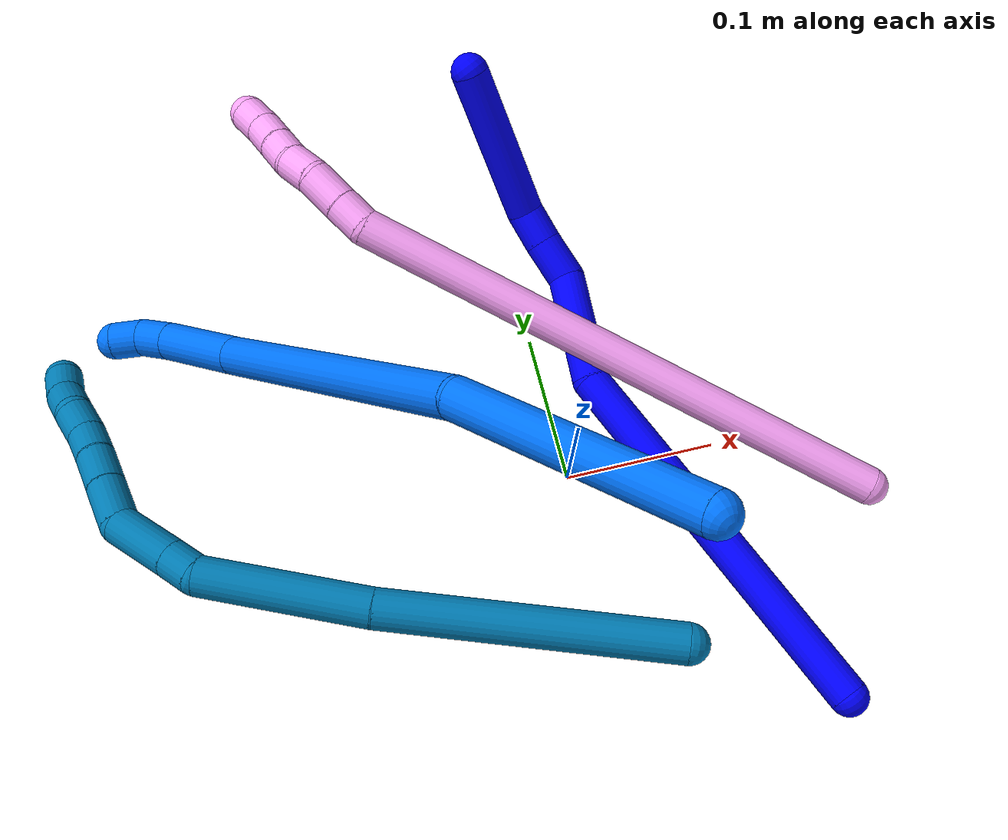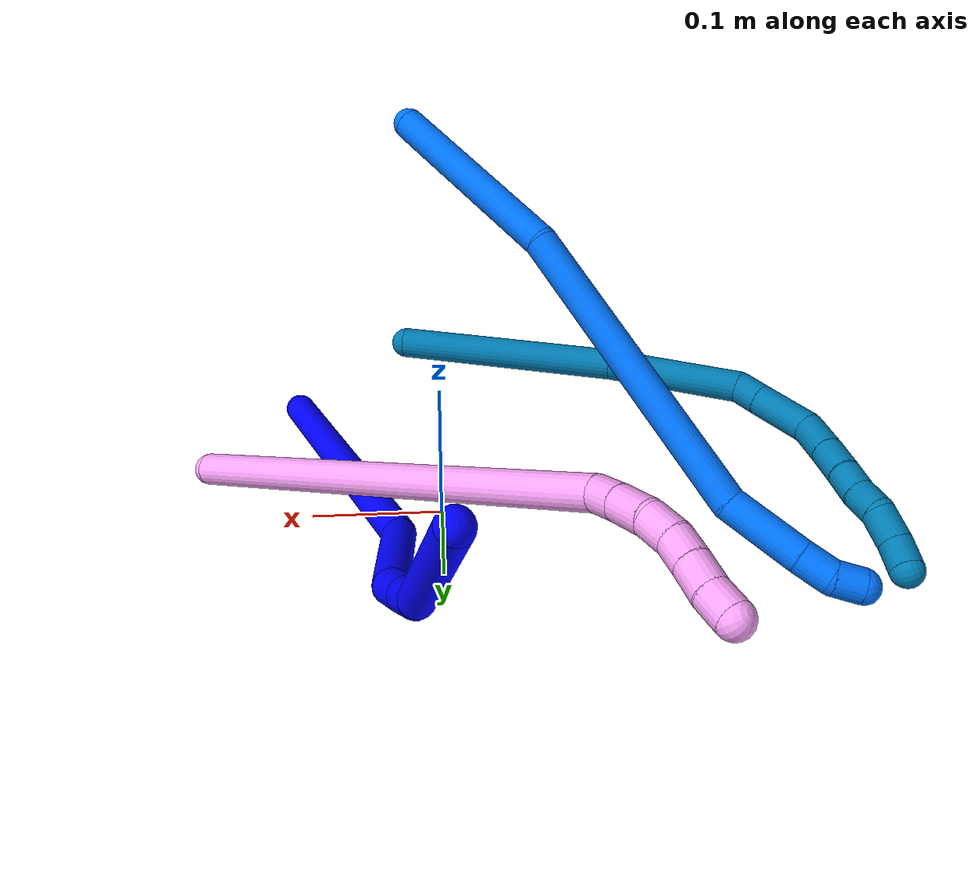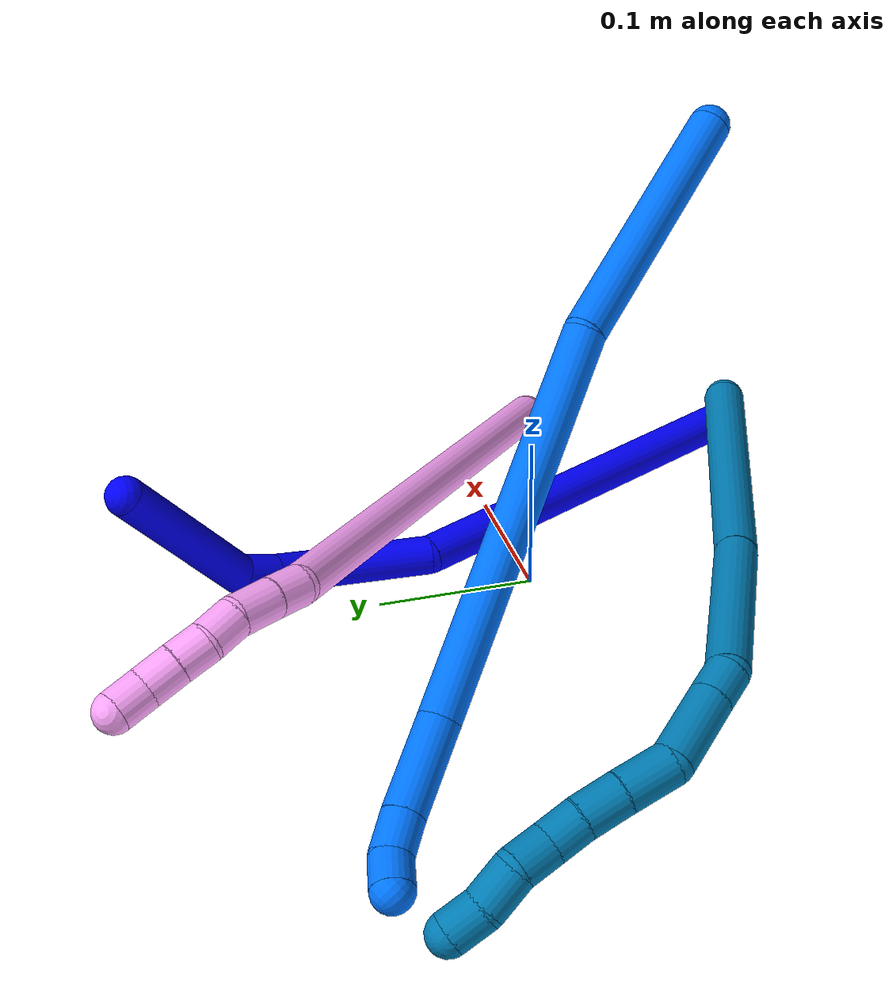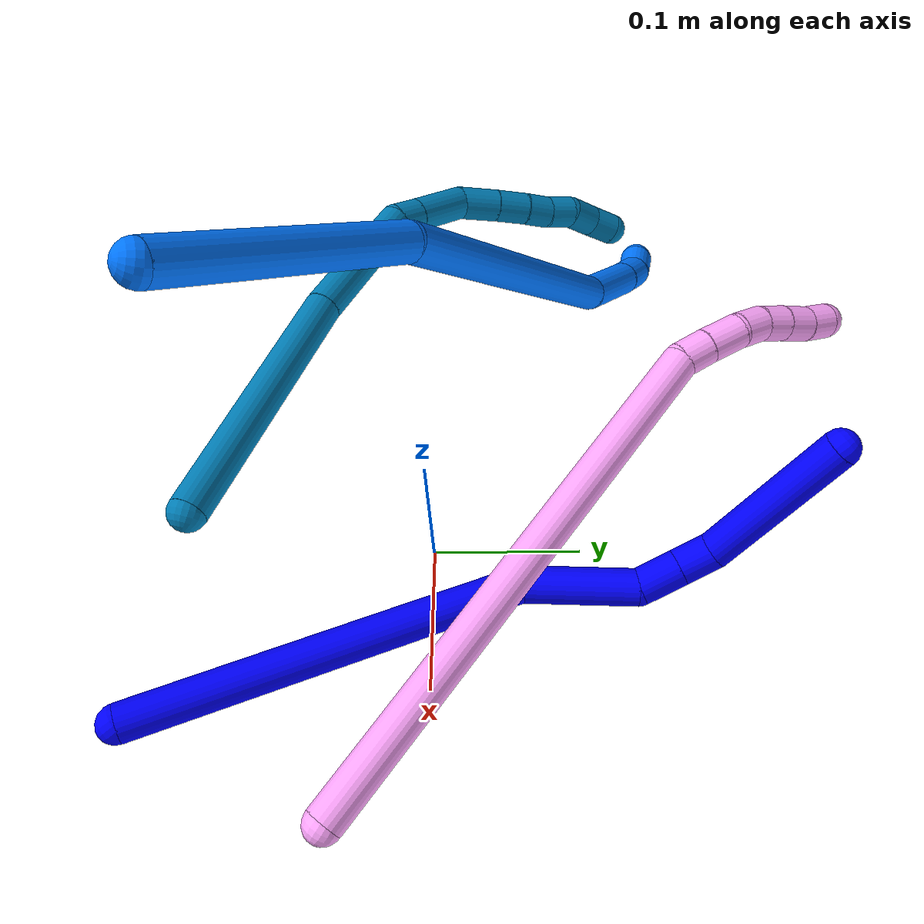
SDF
<sdf version="1.7">
 <world name="default">
  <model name="1">
   <static>0</static>
   <link name="1">
    <collision name="collision-cylinder-e_1_1_4">
     <pose>-0.010954 0.064503 0.112461 -0.520752 -0.084293 0.02247</pose>
     <geometry><cylinder><radius>0.0125</radius><length>0.260216</length></cylinder></geometry>
     <surface>
      <friction><ode><mu>1.16</mu><mu2>1.16</mu2><slip1>0</slip1><slip2>0</slip2></ode></friction>
      <contact><ode><kp>1e+06</kp><kd>1</kd><max_vel>0</max_vel><min_depth>0.001</min_depth></ode></contact>
     </surface>
    </collision>
    <visual name="visual-cylinder-e_1_1_4">
     <pose>-0.010954 0.064503 0.112461 -0.520752 -0.084293 0.02247</pose>
     <geometry><cylinder><radius>0.0125</radius><length>0.260216</length></cylinder></geometry>
     <material><ambient>0 0 1 1</ambient></material>
    </visual>
    <collision name="collision-cylinder-e_2_4_5">
     <pose>-0.009129 0.1502 0.254788 -0.617145 0.335745 -0.107932</pose>
     <geometry><cylinder><radius>0.0125</radius><length>0.077577</length></cylinder></geometry>
     <surface>
      <friction><ode><mu>1.16</mu><mu2>1.16</mu2><slip1>0</slip1><slip2>0</slip2></ode></friction>
      <contact><ode><kp>1e+06</kp><kd>1</kd><max_vel>0</max_vel><min_depth>0.001</min_depth></ode></contact>
     </surface>
    </collision>
    <visual name="visual-cylinder-e_2_4_5">
     <pose>-0.009129 0.1502 0.254788 -0.617145 0.335745 -0.107932</pose>
     <geometry><cylinder><radius>0.0125</radius><length>0.077577</length></cylinder></geometry>
     <material><ambient>0 0 1 1</ambient></material>
    </visual>
    <collision name="collision-cylinder-e_3_5_6">
     <pose>0.004182 0.174736 0.299035 -0.228345 0.035945 -0.004122</pose>
     <geometry><cylinder><radius>0.0125</radius><length>0.029544</length></cylinder></geometry>
     <surface>
      <friction><ode><mu>1.16</mu><mu2>1.16</mu2><slip1>0</slip1><slip2>0</slip2></ode></friction>
      <contact><ode><kp>1e+06</kp><kd>1</kd><max_vel>0</max_vel><min_depth>0.001</min_depth></ode></contact>
     </surface>
    </collision>
    <visual name="visual-cylinder-e_3_5_6">
     <pose>0.004182 0.174736 0.299035 -0.228345 0.035945 -0.004122</pose>
     <geometry><cylinder><radius>0.0125</radius><length>0.029544</length></cylinder></geometry>
     <material><ambient>0 0 1 1</ambient></material>
    </visual>
    <collision name="collision-cylinder-e_4_6_7">
     <pose>0.005878 0.180184 0.325742 -0.169281 0.092932 -0.00789</pose>
     <geometry><cylinder><radius>0.0125</radius><length>0.025123</length></cylinder></geometry>
     <surface>
      <friction><ode><mu>1.16</mu><mu2>1.16</mu2><slip1>0</slip1><slip2>0</slip2></ode></friction>
      <contact><ode><kp>1e+06</kp><kd>1</kd><max_vel>0</max_vel><min_depth>0.001</min_depth></ode></contact>
     </surface>
    </collision>
    <visual name="visual-cylinder-e_4_6_7">
     <pose>0.005878 0.180184 0.325742 -0.169281 0.092932 -0.00789</pose>
     <geometry><cylinder><radius>0.0125</radius><length>0.025123</length></cylinder></geometry>
     <material><ambient>0 0 1 1</ambient></material>
    </visual>
    <collision name="collision-cylinder-e_5_7_2">
     <pose>0.019838 0.165661 0.387578 0.32408 0.240246 0.039459</pose>
     <geometry><cylinder><radius>0.0125</radius><length>0.107541</length></cylinder></geometry>
     <surface>
      <friction><ode><mu>1.16</mu><mu2>1.16</mu2><slip1>0</slip1><slip2>0</slip2></ode></friction>
      <contact><ode><kp>1e+06</kp><kd>1</kd><max_vel>0</max_vel><min_depth>0.001</min_depth></ode></contact>
     </surface>
    </collision>
    <visual name="visual-cylinder-e_5_7_2">
     <pose>0.019838 0.165661 0.387578 0.32408 0.240246 0.039459</pose>
     <geometry><cylinder><radius>0.0125</radius><length>0.107541</length></cylinder></geometry>
     <material><ambient>0 0 1 1</ambient></material>
    </visual>
    <collision name="collision-sphere-2">
     <pose>0.032633 0.14903 0.437086 0 -0 0</pose>
     <geometry><sphere><radius>0.0125</radius></sphere></geometry>
     <surface>
      <friction><ode><mu>1.16</mu><mu2>1.16</mu2><slip1>0</slip1><slip2>0</slip2></ode></friction>
      <contact><ode><kp>1e+06</kp><kd>1</kd><max_vel>0</max_vel><min_depth>0.001</min_depth></ode></contact>
     </surface>
    </collision>
    <visual name="visual-sphere-2">
     <pose>0.032633 0.14903 0.437086 0 -0 0</pose>
     <geometry><sphere><radius>0.0125</radius></sphere></geometry>
     <material><ambient>0 0 1 1</ambient></material>
    </visual>
    <collision name="collision-sphere-7">
     <pose>0.007044 0.182292 0.338071 0 -0 0</pose>
     <geometry><sphere><radius>0.0125</radius></sphere></geometry>
     <surface>
      <friction><ode><mu>1.16</mu><mu2>1.16</mu2><slip1>0</slip1><slip2>0</slip2></ode></friction>
      <contact><ode><kp>1e+06</kp><kd>1</kd><max_vel>0</max_vel><min_depth>0.001</min_depth></ode></contact>
     </surface>
    </collision>
    <visual name="visual-sphere-7">
     <pose>0.007044 0.182292 0.338071 0 -0 0</pose>
     <geometry><sphere><radius>0.0125</radius></sphere></geometry>
     <material><ambient>0 0 1 1</ambient></material>
    </visual>
    <collision name="collision-sphere-6">
     <pose>0.004713 0.178077 0.313414 0 -0 0</pose>
     <geometry><sphere><radius>0.0125</radius></sphere></geometry>
     <surface>
      <friction><ode><mu>1.16</mu><mu2>1.16</mu2><slip1>0</slip1><slip2>0</slip2></ode></friction>
      <contact><ode><kp>1e+06</kp><kd>1</kd><max_vel>0</max_vel><min_depth>0.001</min_depth></ode></contact>
     </surface>
    </collision>
    <visual name="visual-sphere-6">
     <pose>0.004713 0.178077 0.313414 0 -0 0</pose>
     <geometry><sphere><radius>0.0125</radius></sphere></geometry>
     <material><ambient>0 0 1 1</ambient></material>
    </visual>
    <collision name="collision-sphere-5">
     <pose>0.003651 0.171394 0.284655 0 -0 0</pose>
     <geometry><sphere><radius>0.0125</radius></sphere></geometry>
     <surface>
      <friction><ode><mu>1.16</mu><mu2>1.16</mu2><slip1>0</slip1><slip2>0</slip2></ode></friction>
      <contact><ode><kp>1e+06</kp><kd>1</kd><max_vel>0</max_vel><min_depth>0.001</min_depth></ode></contact>
     </surface>
    </collision>
    <visual name="visual-sphere-5">
     <pose>0.003651 0.171394 0.284655 0 -0 0</pose>
     <geometry><sphere><radius>0.0125</radius></sphere></geometry>
     <material><ambient>0 0 1 1</ambient></material>
    </visual>
    <collision name="collision-sphere-1">
     <geometry><sphere><radius>0.0125</radius></sphere></geometry>
     <surface>
      <friction><ode><mu>1.16</mu><mu2>1.16</mu2><slip1>0</slip1><slip2>0</slip2></ode></friction>
      <contact><ode><kp>1e+06</kp><kd>1</kd><max_vel>0</max_vel><min_depth>0.001</min_depth></ode></contact>
     </surface>
    </collision>
    <visual name="visual-sphere-1">
     <geometry><sphere><radius>0.0125</radius></sphere></geometry>
     <material><ambient>0 0 1 1</ambient></material>
    </visual>
    <collision name="collision-sphere-4">
     <pose>-0.021908 0.129006 0.224921 0 -0 0</pose>
     <geometry><sphere><radius>0.0125</radius></sphere></geometry>
     <surface>
      <friction><ode><mu>1.16</mu><mu2>1.16</mu2><slip1>0</slip1><slip2>0</slip2></ode></friction>
      <contact><ode><kp>1e+06</kp><kd>1</kd><max_vel>0</max_vel><min_depth>0.001</min_depth></ode></contact>
     </surface>
    </collision>
    <visual name="visual-sphere-4">
     <pose>-0.021908 0.129006 0.224921 0 -0 0</pose>
     <geometry><sphere><radius>0.0125</radius></sphere></geometry>
     <material><ambient>0 0 1 1</ambient></material>
    </visual>
    <inertial>
     <pose>-0.002308 0.111882 0.215457 0 -0 0</pose>
     <mass>0.5</mass>
     <inertia>
      <ixx>0.001658</ixx>
      <ixy>0</ixy>
      <ixz>0</ixz>
      <iyy>0.001471</iyy>
      <iyz>0</iyz>
      <izz>-0.000605</izz>
     </inertia>
    </inertial>
   </link>
   <pose>0.128129 -0.182706 0.024771 -1.07408 -0.345266 0.30941</pose>
  </model>
  <model name="4">
   <static>0</static>
   <link name="4">
    <collision name="collision-cylinder-e_1_1_4">
     <pose>-0.067863 0.033648 0.167219 -0.198572 -0.378658 0.038172</pose>
     <geometry><cylinder><radius>0.0125</radius><length>0.36715</length></cylinder></geometry>
     <surface>
      <friction><ode><mu>1.16</mu><mu2>1.16</mu2><slip1>0</slip1><slip2>0</slip2></ode></friction>
      <contact><ode><kp>1e+06</kp><kd>1</kd><max_vel>0</max_vel><min_depth>0.001</min_depth></ode></contact>
     </surface>
    </collision>
    <visual name="visual-cylinder-e_1_1_4">
     <pose>-0.067863 0.033648 0.167219 -0.198572 -0.378658 0.038172</pose>
     <geometry><cylinder><radius>0.0125</radius><length>0.36715</length></cylinder></geometry>
     <material><ambient>1 0.65098 0.996078 1</ambient></material>
    </visual>
    <collision name="collision-cylinder-e_2_4_5">
     <pose>-0.13843 0.07292 0.34326 -0.567422 -0.252977 0.074124</pose>
     <geometry><cylinder><radius>0.0125</radius><length>0.021612</length></cylinder></geometry>
     <surface>
      <friction><ode><mu>1.16</mu><mu2>1.16</mu2><slip1>0</slip1><slip2>0</slip2></ode></friction>
      <contact><ode><kp>1e+06</kp><kd>1</kd><max_vel>0</max_vel><min_depth>0.001</min_depth></ode></contact>
     </surface>
    </collision>
    <visual name="visual-cylinder-e_2_4_5">
     <pose>-0.13843 0.07292 0.34326 -0.567422 -0.252977 0.074124</pose>
     <geometry><cylinder><radius>0.0125</radius><length>0.021612</length></cylinder></geometry>
     <material><ambient>1 0.65098 0.996078 1</ambient></material>
    </visual>
    <collision name="collision-cylinder-e_3_5_6">
     <pose>-0.144782 0.086054 0.362707 -0.615413 -0.273331 0.087354</pose>
     <geometry><cylinder><radius>0.0125</radius><length>0.027024</length></cylinder></geometry>
     <surface>
      <friction><ode><mu>1.16</mu><mu2>1.16</mu2><slip1>0</slip1><slip2>0</slip2></ode></friction>
      <contact><ode><kp>1e+06</kp><kd>1</kd><max_vel>0</max_vel><min_depth>0.001</min_depth></ode></contact>
     </surface>
    </collision>
    <visual name="visual-cylinder-e_3_5_6">
     <pose>-0.144782 0.086054 0.362707 -0.615413 -0.273331 0.087354</pose>
     <geometry><cylinder><radius>0.0125</radius><length>0.027024</length></cylinder></geometry>
     <material><ambient>1 0.65098 0.996078 1</ambient></material>
    </visual>
    <collision name="collision-cylinder-e_4_6_7">
     <pose>-0.153583 0.100341 0.380202 -0.778365 -0.490452 0.204549</pose>
     <geometry><cylinder><radius>0.0125</radius><length>0.021881</length></cylinder></geometry>
     <surface>
      <friction><ode><mu>1.16</mu><mu2>1.16</mu2><slip1>0</slip1><slip2>0</slip2></ode></friction>
      <contact><ode><kp>1e+06</kp><kd>1</kd><max_vel>0</max_vel><min_depth>0.001</min_depth></ode></contact>
     </surface>
    </collision>
    <visual name="visual-cylinder-e_4_6_7">
     <pose>-0.153583 0.100341 0.380202 -0.778365 -0.490452 0.204549</pose>
     <geometry><cylinder><radius>0.0125</radius><length>0.021881</length></cylinder></geometry>
     <material><ambient>1 0.65098 0.996078 1</ambient></material>
    </visual>
    <collision name="collision-cylinder-e_5_7_8">
     <pose>-0.162591 0.115108 0.391963 -1.02177 -0.39039 0.220743</pose>
     <geometry><cylinder><radius>0.0125</radius><length>0.02026</length></cylinder></geometry>
     <surface>
      <friction><ode><mu>1.16</mu><mu2>1.16</mu2><slip1>0</slip1><slip2>0</slip2></ode></friction>
      <contact><ode><kp>1e+06</kp><kd>1</kd><max_vel>0</max_vel><min_depth>0.001</min_depth></ode></contact>
     </surface>
    </collision>
    <visual name="visual-cylinder-e_5_7_8">
     <pose>-0.162591 0.115108 0.391963 -1.02177 -0.39039 0.220743</pose>
     <geometry><cylinder><radius>0.0125</radius><length>0.02026</length></cylinder></geometry>
     <material><ambient>1 0.65098 0.996078 1</ambient></material>
    </visual>
    <collision name="collision-cylinder-e_6_8_9">
     <pose>-0.170775 0.13176 0.401665 -1.06353 -0.411856 0.24455</pose>
     <geometry><cylinder><radius>0.0125</radius><length>0.021626</length></cylinder></geometry>
     <surface>
      <friction><ode><mu>1.16</mu><mu2>1.16</mu2><slip1>0</slip1><slip2>0</slip2></ode></friction>
      <contact><ode><kp>1e+06</kp><kd>1</kd><max_vel>0</max_vel><min_depth>0.001</min_depth></ode></contact>
     </surface>
    </collision>
    <visual name="visual-cylinder-e_6_8_9">
     <pose>-0.170775 0.13176 0.401665 -1.06353 -0.411856 0.24455</pose>
     <geometry><cylinder><radius>0.0125</radius><length>0.021626</length></cylinder></geometry>
     <material><ambient>1 0.65098 0.996078 1</ambient></material>
    </visual>
    <collision name="collision-cylinder-e_7_9_2">
     <pose>-0.179365 0.147759 0.41218 -0.910322 -0.430008 0.212957</pose>
     <geometry><cylinder><radius>0.0125</radius><length>0.020447</length></cylinder></geometry>
     <surface>
      <friction><ode><mu>1.16</mu><mu2>1.16</mu2><slip1>0</slip1><slip2>0</slip2></ode></friction>
      <contact><ode><kp>1e+06</kp><kd>1</kd><max_vel>0</max_vel><min_depth>0.001</min_depth></ode></contact>
     </surface>
    </collision>
    <visual name="visual-cylinder-e_7_9_2">
     <pose>-0.179365 0.147759 0.41218 -0.910322 -0.430008 0.212957</pose>
     <geometry><cylinder><radius>0.0125</radius><length>0.020447</length></cylinder></geometry>
     <material><ambient>1 0.65098 0.996078 1</ambient></material>
    </visual>
    <collision name="collision-sphere-2">
     <pose>-0.183627 0.155098 0.417881 0 -0 0</pose>
     <geometry><sphere><radius>0.0125</radius></sphere></geometry>
     <surface>
      <friction><ode><mu>1.16</mu><mu2>1.16</mu2><slip1>0</slip1><slip2>0</slip2></ode></friction>
      <contact><ode><kp>1e+06</kp><kd>1</kd><max_vel>0</max_vel><min_depth>0.001</min_depth></ode></contact>
     </surface>
    </collision>
    <visual name="visual-sphere-2">
     <pose>-0.183627 0.155098 0.417881 0 -0 0</pose>
     <geometry><sphere><radius>0.0125</radius></sphere></geometry>
     <material><ambient>1 0.65098 0.996078 1</ambient></material>
    </visual>
    <collision name="collision-sphere-9">
     <pose>-0.175103 0.140421 0.406478 0 -0 0</pose>
     <geometry><sphere><radius>0.0125</radius></sphere></geometry>
     <surface>
      <friction><ode><mu>1.16</mu><mu2>1.16</mu2><slip1>0</slip1><slip2>0</slip2></ode></friction>
      <contact><ode><kp>1e+06</kp><kd>1</kd><max_vel>0</max_vel><min_depth>0.001</min_depth></ode></contact>
     </surface>
    </collision>
    <visual name="visual-sphere-9">
     <pose>-0.175103 0.140421 0.406478 0 -0 0</pose>
     <geometry><sphere><radius>0.0125</radius></sphere></geometry>
     <material><ambient>1 0.65098 0.996078 1</ambient></material>
    </visual>
    <collision name="collision-sphere-4">
     <pose>-0.135726 0.067297 0.334438 0 -0 0</pose>
     <geometry><sphere><radius>0.0125</radius></sphere></geometry>
     <surface>
      <friction><ode><mu>1.16</mu><mu2>1.16</mu2><slip1>0</slip1><slip2>0</slip2></ode></friction>
      <contact><ode><kp>1e+06</kp><kd>1</kd><max_vel>0</max_vel><min_depth>0.001</min_depth></ode></contact>
     </surface>
    </collision>
    <visual name="visual-sphere-4">
     <pose>-0.135726 0.067297 0.334438 0 -0 0</pose>
     <geometry><sphere><radius>0.0125</radius></sphere></geometry>
     <material><ambient>1 0.65098 0.996078 1</ambient></material>
    </visual>
    <collision name="collision-sphere-1">
     <geometry><sphere><radius>0.0125</radius></sphere></geometry>
     <surface>
      <friction><ode><mu>1.16</mu><mu2>1.16</mu2><slip1>0</slip1><slip2>0</slip2></ode></friction>
      <contact><ode><kp>1e+06</kp><kd>1</kd><max_vel>0</max_vel><min_depth>0.001</min_depth></ode></contact>
     </surface>
    </collision>
    <visual name="visual-sphere-1">
     <geometry><sphere><radius>0.0125</radius></sphere></geometry>
     <material><ambient>1 0.65098 0.996078 1</ambient></material>
    </visual>
    <collision name="collision-sphere-8">
     <pose>-0.166446 0.123099 0.396851 0 -0 0</pose>
     <geometry><sphere><radius>0.0125</radius></sphere></geometry>
     <surface>
      <friction><ode><mu>1.16</mu><mu2>1.16</mu2><slip1>0</slip1><slip2>0</slip2></ode></friction>
      <contact><ode><kp>1e+06</kp><kd>1</kd><max_vel>0</max_vel><min_depth>0.001</min_depth></ode></contact>
     </surface>
    </collision>
    <visual name="visual-sphere-8">
     <pose>-0.166446 0.123099 0.396851 0 -0 0</pose>
     <geometry><sphere><radius>0.0125</radius></sphere></geometry>
     <material><ambient>1 0.65098 0.996078 1</ambient></material>
    </visual>
    <collision name="collision-sphere-5">
     <pose>-0.141135 0.078543 0.352083 0 -0 0</pose>
     <geometry><sphere><radius>0.0125</radius></sphere></geometry>
     <surface>
      <friction><ode><mu>1.16</mu><mu2>1.16</mu2><slip1>0</slip1><slip2>0</slip2></ode></friction>
      <contact><ode><kp>1e+06</kp><kd>1</kd><max_vel>0</max_vel><min_depth>0.001</min_depth></ode></contact>
     </surface>
    </collision>
    <visual name="visual-sphere-5">
     <pose>-0.141135 0.078543 0.352083 0 -0 0</pose>
     <geometry><sphere><radius>0.0125</radius></sphere></geometry>
     <material><ambient>1 0.65098 0.996078 1</ambient></material>
    </visual>
    <collision name="collision-sphere-6">
     <pose>-0.14843 0.093565 0.37333 0 -0 0</pose>
     <geometry><sphere><radius>0.0125</radius></sphere></geometry>
     <surface>
      <friction><ode><mu>1.16</mu><mu2>1.16</mu2><slip1>0</slip1><slip2>0</slip2></ode></friction>
      <contact><ode><kp>1e+06</kp><kd>1</kd><max_vel>0</max_vel><min_depth>0.001</min_depth></ode></contact>
     </surface>
    </collision>
    <visual name="visual-sphere-6">
     <pose>-0.14843 0.093565 0.37333 0 -0 0</pose>
     <geometry><sphere><radius>0.0125</radius></sphere></geometry>
     <material><ambient>1 0.65098 0.996078 1</ambient></material>
    </visual>
    <collision name="collision-sphere-7">
     <pose>-0.158736 0.107117 0.387074 0 -0 0</pose>
     <geometry><sphere><radius>0.0125</radius></sphere></geometry>
     <surface>
      <friction><ode><mu>1.16</mu><mu2>1.16</mu2><slip1>0</slip1><slip2>0</slip2></ode></friction>
      <contact><ode><kp>1e+06</kp><kd>1</kd><max_vel>0</max_vel><min_depth>0.001</min_depth></ode></contact>
     </surface>
    </collision>
    <visual name="visual-sphere-7">
     <pose>-0.158736 0.107117 0.387074 0 -0 0</pose>
     <geometry><sphere><radius>0.0125</radius></sphere></geometry>
     <material><ambient>1 0.65098 0.996078 1</ambient></material>
    </visual>
    <inertial>
     <pose>-0.091671 0.053308 0.223979 0 -0 0</pose>
     <mass>0.5</mass>
     <inertia>
      <ixx>0.003987</ixx>
      <ixy>0</ixy>
      <ixz>0</ixz>
      <iyy>0.004234</iyy>
      <iyz>0</iyz>
      <izz>0.000801</izz>
     </inertia>
    </inertial>
   </link>
   <pose>0.186144 -0.056286 0.019654 -0.652806 -0.765931 0.118436</pose>
  </model>
  <model name="9">
   <static>0</static>
   <link name="9">
    <collision name="collision-cylinder-e_1_1_4">
     <pose>-0.030052 0.024366 0.082381 -0.287576 -0.336506 0.049177</pose>
     <geometry><cylinder><radius>0.0125</radius><length>0.182027</length></cylinder></geometry>
     <surface>
      <friction><ode><mu>1.16</mu><mu2>1.16</mu2><slip1>0</slip1><slip2>0</slip2></ode></friction>
      <contact><ode><kp>1e+06</kp><kd>1</kd><max_vel>0</max_vel><min_depth>0.001</min_depth></ode></contact>
     </surface>
    </collision>
    <visual name="visual-cylinder-e_1_1_4">
     <pose>-0.030052 0.024366 0.082381 -0.287576 -0.336506 0.049177</pose>
     <geometry><cylinder><radius>0.0125</radius><length>0.182027</length></cylinder></geometry>
     <material><ambient>0 0.490196 0.709804 1</ambient></material>
    </visual>
    <collision name="collision-cylinder-e_2_4_5">
     <pose>-0.077523 0.067728 0.211933 -0.382821 -0.330031 0.064519</pose>
     <geometry><cylinder><radius>0.0125</radius><length>0.107504</length></cylinder></geometry>
     <surface>
      <friction><ode><mu>1.16</mu><mu2>1.16</mu2><slip1>0</slip1><slip2>0</slip2></ode></friction>
      <contact><ode><kp>1e+06</kp><kd>1</kd><max_vel>0</max_vel><min_depth>0.001</min_depth></ode></contact>
     </surface>
    </collision>
    <visual name="visual-cylinder-e_2_4_5">
     <pose>-0.077523 0.067728 0.211933 -0.382821 -0.330031 0.064519</pose>
     <geometry><cylinder><radius>0.0125</radius><length>0.107504</length></cylinder></geometry>
     <material><ambient>0 0.490196 0.709804 1</ambient></material>
    </visual>
    <collision name="collision-cylinder-e_3_5_6">
     <pose>-0.097768 0.09436 0.265538 -0.870719 -0.275645 0.128849</pose>
     <geometry><cylinder><radius>0.0125</radius><length>0.020758</length></cylinder></geometry>
     <surface>
      <friction><ode><mu>1.16</mu><mu2>1.16</mu2><slip1>0</slip1><slip2>0</slip2></ode></friction>
      <contact><ode><kp>1e+06</kp><kd>1</kd><max_vel>0</max_vel><min_depth>0.001</min_depth></ode></contact>
     </surface>
    </collision>
    <visual name="visual-cylinder-e_3_5_6">
     <pose>-0.097768 0.09436 0.265538 -0.870719 -0.275645 0.128849</pose>
     <geometry><cylinder><radius>0.0125</radius><length>0.020758</length></cylinder></geometry>
     <material><ambient>0 0.490196 0.709804 1</ambient></material>
    </visual>
    <collision name="collision-cylinder-e_4_6_7">
     <pose>-0.106805 0.118344 0.286261 -0.852428 -0.27869 0.127192</pose>
     <geometry><cylinder><radius>0.0125</radius><length>0.045165</length></cylinder></geometry>
     <surface>
      <friction><ode><mu>1.16</mu><mu2>1.16</mu2><slip1>0</slip1><slip2>0</slip2></ode></friction>
      <contact><ode><kp>1e+06</kp><kd>1</kd><max_vel>0</max_vel><min_depth>0.001</min_depth></ode></contact>
     </surface>
    </collision>
    <visual name="visual-cylinder-e_4_6_7">
     <pose>-0.106805 0.118344 0.286261 -0.852428 -0.27869 0.127192</pose>
     <geometry><cylinder><radius>0.0125</radius><length>0.045165</length></cylinder></geometry>
     <material><ambient>0 0.490196 0.709804 1</ambient></material>
    </visual>
    <collision name="collision-cylinder-e_5_7_8">
     <pose>-0.112694 0.149401 0.305092 -1.27141 0.021005 -0.0155</pose>
     <geometry><cylinder><radius>0.0125</radius><length>0.030797</length></cylinder></geometry>
     <surface>
      <friction><ode><mu>1.16</mu><mu2>1.16</mu2><slip1>0</slip1><slip2>0</slip2></ode></friction>
      <contact><ode><kp>1e+06</kp><kd>1</kd><max_vel>0</max_vel><min_depth>0.001</min_depth></ode></contact>
     </surface>
    </collision>
    <visual name="visual-cylinder-e_5_7_8">
     <pose>-0.112694 0.149401 0.305092 -1.27141 0.021005 -0.0155</pose>
     <geometry><cylinder><radius>0.0125</radius><length>0.030797</length></cylinder></geometry>
     <material><ambient>0 0.490196 0.709804 1</ambient></material>
    </visual>
    <collision name="collision-cylinder-e_6_8_9">
     <pose>-0.112536 0.176249 0.313101 -1.29241 -0.013116 0.009892</pose>
     <geometry><cylinder><radius>0.0125</radius><length>0.02525</length></cylinder></geometry>
     <surface>
      <friction><ode><mu>1.16</mu><mu2>1.16</mu2><slip1>0</slip1><slip2>0</slip2></ode></friction>
      <contact><ode><kp>1e+06</kp><kd>1</kd><max_vel>0</max_vel><min_depth>0.001</min_depth></ode></contact>
     </surface>
    </collision>
    <visual name="visual-cylinder-e_6_8_9">
     <pose>-0.112536 0.176249 0.313101 -1.29241 -0.013116 0.009892</pose>
     <geometry><cylinder><radius>0.0125</radius><length>0.02525</length></cylinder></geometry>
     <material><ambient>0 0.490196 0.709804 1</ambient></material>
    </visual>
    <collision name="collision-cylinder-e_7_9_10">
     <pose>-0.113831 0.198367 0.319345 -1.2996 -0.108595 0.082554</pose>
     <geometry><cylinder><radius>0.0125</radius><length>0.020841</length></cylinder></geometry>
     <surface>
      <friction><ode><mu>1.16</mu><mu2>1.16</mu2><slip1>0</slip1><slip2>0</slip2></ode></friction>
      <contact><ode><kp>1e+06</kp><kd>1</kd><max_vel>0</max_vel><min_depth>0.001</min_depth></ode></contact>
     </surface>
    </collision>
    <visual name="visual-cylinder-e_7_9_10">
     <pose>-0.113831 0.198367 0.319345 -1.2996 -0.108595 0.082554</pose>
     <geometry><cylinder><radius>0.0125</radius><length>0.020841</length></cylinder></geometry>
     <material><ambient>0 0.490196 0.709804 1</ambient></material>
    </visual>
    <collision name="collision-cylinder-e_8_10_11">
     <pose>-0.115546 0.218107 0.3264 -1.15751 -0.054923 0.035891</pose>
     <geometry><cylinder><radius>0.0125</radius><length>0.021345</length></cylinder></geometry>
     <surface>
      <friction><ode><mu>1.16</mu><mu2>1.16</mu2><slip1>0</slip1><slip2>0</slip2></ode></friction>
      <contact><ode><kp>1e+06</kp><kd>1</kd><max_vel>0</max_vel><min_depth>0.001</min_depth></ode></contact>
     </surface>
    </collision>
    <visual name="visual-cylinder-e_8_10_11">
     <pose>-0.115546 0.218107 0.3264 -1.15751 -0.054923 0.035891</pose>
     <geometry><cylinder><radius>0.0125</radius><length>0.021345</length></cylinder></geometry>
     <material><ambient>0 0.490196 0.709804 1</ambient></material>
    </visual>
    <collision name="collision-cylinder-e_9_11_12">
     <pose>-0.120629 0.239227 0.3328 -1.38628 -0.371062 0.309311</pose>
     <geometry><cylinder><radius>0.0125</radius><length>0.024802</length></cylinder></geometry>
     <surface>
      <friction><ode><mu>1.16</mu><mu2>1.16</mu2><slip1>0</slip1><slip2>0</slip2></ode></friction>
      <contact><ode><kp>1e+06</kp><kd>1</kd><max_vel>0</max_vel><min_depth>0.001</min_depth></ode></contact>
     </surface>
    </collision>
    <visual name="visual-cylinder-e_9_11_12">
     <pose>-0.120629 0.239227 0.3328 -1.38628 -0.371062 0.309311</pose>
     <geometry><cylinder><radius>0.0125</radius><length>0.024802</length></cylinder></geometry>
     <material><ambient>0 0.490196 0.709804 1</ambient></material>
    </visual>
    <collision name="collision-cylinder-e_10_12_2">
     <pose>-0.12669 0.2612 0.335708 -1.49672 -0.14595 0.135553</pose>
     <geometry><cylinder><radius>0.0125</radius><length>0.021511</length></cylinder></geometry>
     <surface>
      <friction><ode><mu>1.16</mu><mu2>1.16</mu2><slip1>0</slip1><slip2>0</slip2></ode></friction>
      <contact><ode><kp>1e+06</kp><kd>1</kd><max_vel>0</max_vel><min_depth>0.001</min_depth></ode></contact>
     </surface>
    </collision>
    <visual name="visual-cylinder-e_10_12_2">
     <pose>-0.12669 0.2612 0.335708 -1.49672 -0.14595 0.135553</pose>
     <geometry><cylinder><radius>0.0125</radius><length>0.021511</length></cylinder></geometry>
     <material><ambient>0 0.490196 0.709804 1</ambient></material>
    </visual>
    <collision name="collision-sphere-2">
     <pose>-0.128254 0.271811 0.336496 0 -0 0</pose>
     <geometry><sphere><radius>0.0125</radius></sphere></geometry>
     <surface>
      <friction><ode><mu>1.16</mu><mu2>1.16</mu2><slip1>0</slip1><slip2>0</slip2></ode></friction>
      <contact><ode><kp>1e+06</kp><kd>1</kd><max_vel>0</max_vel><min_depth>0.001</min_depth></ode></contact>
     </surface>
    </collision>
    <visual name="visual-sphere-2">
     <pose>-0.128254 0.271811 0.336496 0 -0 0</pose>
     <geometry><sphere><radius>0.0125</radius></sphere></geometry>
     <material><ambient>0 0.490196 0.709804 1</ambient></material>
    </visual>
    <collision name="collision-sphere-12">
     <pose>-0.125125 0.250588 0.334921 0 -0 0</pose>
     <geometry><sphere><radius>0.0125</radius></sphere></geometry>
     <surface>
      <friction><ode><mu>1.16</mu><mu2>1.16</mu2><slip1>0</slip1><slip2>0</slip2></ode></friction>
      <contact><ode><kp>1e+06</kp><kd>1</kd><max_vel>0</max_vel><min_depth>0.001</min_depth></ode></contact>
     </surface>
    </collision>
    <visual name="visual-sphere-12">
     <pose>-0.125125 0.250588 0.334921 0 -0 0</pose>
     <geometry><sphere><radius>0.0125</radius></sphere></geometry>
     <material><ambient>0 0.490196 0.709804 1</ambient></material>
    </visual>
    <collision name="collision-sphere-11">
     <pose>-0.116132 0.227866 0.33068 0 -0 0</pose>
     <geometry><sphere><radius>0.0125</radius></sphere></geometry>
     <surface>
      <friction><ode><mu>1.16</mu><mu2>1.16</mu2><slip1>0</slip1><slip2>0</slip2></ode></friction>
      <contact><ode><kp>1e+06</kp><kd>1</kd><max_vel>0</max_vel><min_depth>0.001</min_depth></ode></contact>
     </surface>
    </collision>
    <visual name="visual-sphere-11">
     <pose>-0.116132 0.227866 0.33068 0 -0 0</pose>
     <geometry><sphere><radius>0.0125</radius></sphere></geometry>
     <material><ambient>0 0.490196 0.709804 1</ambient></material>
    </visual>
    <collision name="collision-sphere-10">
     <pose>-0.11496 0.208348 0.32212 0 -0 0</pose>
     <geometry><sphere><radius>0.0125</radius></sphere></geometry>
     <surface>
      <friction><ode><mu>1.16</mu><mu2>1.16</mu2><slip1>0</slip1><slip2>0</slip2></ode></friction>
      <contact><ode><kp>1e+06</kp><kd>1</kd><max_vel>0</max_vel><min_depth>0.001</min_depth></ode></contact>
     </surface>
    </collision>
    <visual name="visual-sphere-10">
     <pose>-0.11496 0.208348 0.32212 0 -0 0</pose>
     <geometry><sphere><radius>0.0125</radius></sphere></geometry>
     <material><ambient>0 0.490196 0.709804 1</ambient></material>
    </visual>
    <collision name="collision-sphere-9">
     <pose>-0.112702 0.188387 0.31657 0 -0 0</pose>
     <geometry><sphere><radius>0.0125</radius></sphere></geometry>
     <surface>
      <friction><ode><mu>1.16</mu><mu2>1.16</mu2><slip1>0</slip1><slip2>0</slip2></ode></friction>
      <contact><ode><kp>1e+06</kp><kd>1</kd><max_vel>0</max_vel><min_depth>0.001</min_depth></ode></contact>
     </surface>
    </collision>
    <visual name="visual-sphere-9">
     <pose>-0.112702 0.188387 0.31657 0 -0 0</pose>
     <geometry><sphere><radius>0.0125</radius></sphere></geometry>
     <material><ambient>0 0.490196 0.709804 1</ambient></material>
    </visual>
    <collision name="collision-sphere-4">
     <pose>-0.060104 0.048733 0.164762 0 -0 0</pose>
     <geometry><sphere><radius>0.0125</radius></sphere></geometry>
     <surface>
      <friction><ode><mu>1.16</mu><mu2>1.16</mu2><slip1>0</slip1><slip2>0</slip2></ode></friction>
      <contact><ode><kp>1e+06</kp><kd>1</kd><max_vel>0</max_vel><min_depth>0.001</min_depth></ode></contact>
     </surface>
    </collision>
    <visual name="visual-sphere-4">
     <pose>-0.060104 0.048733 0.164762 0 -0 0</pose>
     <geometry><sphere><radius>0.0125</radius></sphere></geometry>
     <material><ambient>0 0.490196 0.709804 1</ambient></material>
    </visual>
    <collision name="collision-sphere-1">
     <geometry><sphere><radius>0.0125</radius></sphere></geometry>
     <surface>
      <friction><ode><mu>1.16</mu><mu2>1.16</mu2><slip1>0</slip1><slip2>0</slip2></ode></friction>
      <contact><ode><kp>1e+06</kp><kd>1</kd><max_vel>0</max_vel><min_depth>0.001</min_depth></ode></contact>
     </surface>
    </collision>
    <visual name="visual-sphere-1">
     <geometry><sphere><radius>0.0125</radius></sphere></geometry>
     <material><ambient>0 0.490196 0.709804 1</ambient></material>
    </visual>
    <collision name="collision-sphere-8">
     <pose>-0.112371 0.164111 0.309632 0 -0 0</pose>
     <geometry><sphere><radius>0.0125</radius></sphere></geometry>
     <surface>
      <friction><ode><mu>1.16</mu><mu2>1.16</mu2><slip1>0</slip1><slip2>0</slip2></ode></friction>
      <contact><ode><kp>1e+06</kp><kd>1</kd><max_vel>0</max_vel><min_depth>0.001</min_depth></ode></contact>
     </surface>
    </collision>
    <visual name="visual-sphere-8">
     <pose>-0.112371 0.164111 0.309632 0 -0 0</pose>
     <geometry><sphere><radius>0.0125</radius></sphere></geometry>
     <material><ambient>0 0.490196 0.709804 1</ambient></material>
    </visual>
    <collision name="collision-sphere-5">
     <pose>-0.094943 0.086722 0.259103 0 -0 0</pose>
     <geometry><sphere><radius>0.0125</radius></sphere></geometry>
     <surface>
      <friction><ode><mu>1.16</mu><mu2>1.16</mu2><slip1>0</slip1><slip2>0</slip2></ode></friction>
      <contact><ode><kp>1e+06</kp><kd>1</kd><max_vel>0</max_vel><min_depth>0.001</min_depth></ode></contact>
     </surface>
    </collision>
    <visual name="visual-sphere-5">
     <pose>-0.094943 0.086722 0.259103 0 -0 0</pose>
     <geometry><sphere><radius>0.0125</radius></sphere></geometry>
     <material><ambient>0 0.490196 0.709804 1</ambient></material>
    </visual>
    <collision name="collision-sphere-6">
     <pose>-0.100593 0.101998 0.271972 0 -0 0</pose>
     <geometry><sphere><radius>0.0125</radius></sphere></geometry>
     <surface>
      <friction><ode><mu>1.16</mu><mu2>1.16</mu2><slip1>0</slip1><slip2>0</slip2></ode></friction>
      <contact><ode><kp>1e+06</kp><kd>1</kd><max_vel>0</max_vel><min_depth>0.001</min_depth></ode></contact>
     </surface>
    </collision>
    <visual name="visual-sphere-6">
     <pose>-0.100593 0.101998 0.271972 0 -0 0</pose>
     <geometry><sphere><radius>0.0125</radius></sphere></geometry>
     <material><ambient>0 0.490196 0.709804 1</ambient></material>
    </visual>
    <collision name="collision-sphere-7">
     <pose>-0.113017 0.13469 0.300551 0 -0 0</pose>
     <geometry><sphere><radius>0.0125</radius></sphere></geometry>
     <surface>
      <friction><ode><mu>1.16</mu><mu2>1.16</mu2><slip1>0</slip1><slip2>0</slip2></ode></friction>
      <contact><ode><kp>1e+06</kp><kd>1</kd><max_vel>0</max_vel><min_depth>0.001</min_depth></ode></contact>
     </surface>
    </collision>
    <visual name="visual-sphere-7">
     <pose>-0.113017 0.13469 0.300551 0 -0 0</pose>
     <geometry><sphere><radius>0.0125</radius></sphere></geometry>
     <material><ambient>0 0.490196 0.709804 1</ambient></material>
    </visual>
    <inertial>
     <pose>-0.075051 0.096826 0.20524 0 -0 0</pose>
     <mass>0.5</mass>
     <inertia>
      <ixx>0.000628</ixx>
      <ixy>0</ixy>
      <ixz>0</ixz>
      <iyy>0.000656</iyy>
      <iyz>0</iyz>
      <izz>3.9e-05</izz>
     </inertia>
    </inertial>
   </link>
   <pose>0.027419 -0.139474 0.098452 -0.818796 -0.958684 0.651361</pose>
  </model>
  <model name="14">
   <static>0</static>
   <link name="14">
    <collision name="collision-cylinder-e_1_1_4">
     <pose>-0.02708 0.004376 0.077628 -0.056315 -0.335149 0.009529</pose>
     <geometry><cylinder><radius>0.0125</radius><length>0.164664</length></cylinder></geometry>
     <surface>
      <friction><ode><mu>1.16</mu><mu2>1.16</mu2><slip1>0</slip1><slip2>0</slip2></ode></friction>
      <contact><ode><kp>1e+06</kp><kd>1</kd><max_vel>0</max_vel><min_depth>0.001</min_depth></ode></contact>
     </surface>
    </collision>
    <visual name="visual-cylinder-e_1_1_4">
     <pose>-0.02708 0.004376 0.077628 -0.056315 -0.335149 0.009529</pose>
     <geometry><cylinder><radius>0.0125</radius><length>0.164664</length></cylinder></geometry>
     <material><ambient>0 0.462745 1 1</ambient></material>
    </visual>
    <collision name="collision-cylinder-e_2_4_5">
     <pose>-0.086503 0.047002 0.260061 -0.349939 -0.282162 0.050203</pose>
     <geometry><cylinder><radius>0.0125</radius><length>0.23232</length></cylinder></geometry>
     <surface>
      <friction><ode><mu>1.16</mu><mu2>1.16</mu2><slip1>0</slip1><slip2>0</slip2></ode></friction>
      <contact><ode><kp>1e+06</kp><kd>1</kd><max_vel>0</max_vel><min_depth>0.001</min_depth></ode></contact>
     </surface>
    </collision>
    <visual name="visual-cylinder-e_2_4_5">
     <pose>-0.086503 0.047002 0.260061 -0.349939 -0.282162 0.050203</pose>
     <geometry><cylinder><radius>0.0125</radius><length>0.23232</length></cylinder></geometry>
     <material><ambient>0 0.462745 1 1</ambient></material>
    </visual>
    <collision name="collision-cylinder-e_3_5_6">
     <pose>-0.133118 0.087782 0.390023 -0.100248 -0.513906 0.026362</pose>
     <geometry><cylinder><radius>0.0125</radius><length>0.058068</length></cylinder></geometry>
     <surface>
      <friction><ode><mu>1.16</mu><mu2>1.16</mu2><slip1>0</slip1><slip2>0</slip2></ode></friction>
      <contact><ode><kp>1e+06</kp><kd>1</kd><max_vel>0</max_vel><min_depth>0.001</min_depth></ode></contact>
     </surface>
    </collision>
    <visual name="visual-cylinder-e_3_5_6">
     <pose>-0.133118 0.087782 0.390023 -0.100248 -0.513906 0.026362</pose>
     <geometry><cylinder><radius>0.0125</radius><length>0.058068</length></cylinder></geometry>
     <material><ambient>0 0.462745 1 1</ambient></material>
    </visual>
    <collision name="collision-cylinder-e_4_6_7">
     <pose>-0.154006 0.091532 0.42513 -0.121904 -0.583283 0.036637</pose>
     <geometry><cylinder><radius>0.0125</radius><length>0.024023</length></cylinder></geometry>
     <surface>
      <friction><ode><mu>1.16</mu><mu2>1.16</mu2><slip1>0</slip1><slip2>0</slip2></ode></friction>
      <contact><ode><kp>1e+06</kp><kd>1</kd><max_vel>0</max_vel><min_depth>0.001</min_depth></ode></contact>
     </surface>
    </collision>
    <visual name="visual-cylinder-e_4_6_7">
     <pose>-0.154006 0.091532 0.42513 -0.121904 -0.583283 0.036637</pose>
     <geometry><cylinder><radius>0.0125</radius><length>0.024023</length></cylinder></geometry>
     <material><ambient>0 0.462745 1 1</ambient></material>
    </visual>
    <collision name="collision-cylinder-e_5_7_2">
     <pose>-0.169297 0.093336 0.4409 -0.100318 -0.977744 0.053395</pose>
     <geometry><cylinder><radius>0.0125</radius><length>0.020925</length></cylinder></geometry>
     <surface>
      <friction><ode><mu>1.16</mu><mu2>1.16</mu2><slip1>0</slip1><slip2>0</slip2></ode></friction>
      <contact><ode><kp>1e+06</kp><kd>1</kd><max_vel>0</max_vel><min_depth>0.001</min_depth></ode></contact>
     </surface>
    </collision>
    <visual name="visual-cylinder-e_5_7_2">
     <pose>-0.169297 0.093336 0.4409 -0.100318 -0.977744 0.053395</pose>
     <geometry><cylinder><radius>0.0125</radius><length>0.020925</length></cylinder></geometry>
     <material><ambient>0 0.462745 1 1</ambient></material>
    </visual>
    <collision name="collision-sphere-2">
     <pose>-0.177973 0.093922 0.446718 0 -0 0</pose>
     <geometry><sphere><radius>0.0125</radius></sphere></geometry>
     <surface>
      <friction><ode><mu>1.16</mu><mu2>1.16</mu2><slip1>0</slip1><slip2>0</slip2></ode></friction>
      <contact><ode><kp>1e+06</kp><kd>1</kd><max_vel>0</max_vel><min_depth>0.001</min_depth></ode></contact>
     </surface>
    </collision>
    <visual name="visual-sphere-2">
     <pose>-0.177973 0.093922 0.446718 0 -0 0</pose>
     <geometry><sphere><radius>0.0125</radius></sphere></geometry>
     <material><ambient>0 0.462745 1 1</ambient></material>
    </visual>
    <collision name="collision-sphere-7">
     <pose>-0.160622 0.092751 0.435082 0 -0 0</pose>
     <geometry><sphere><radius>0.0125</radius></sphere></geometry>
     <surface>
      <friction><ode><mu>1.16</mu><mu2>1.16</mu2><slip1>0</slip1><slip2>0</slip2></ode></friction>
      <contact><ode><kp>1e+06</kp><kd>1</kd><max_vel>0</max_vel><min_depth>0.001</min_depth></ode></contact>
     </surface>
    </collision>
    <visual name="visual-sphere-7">
     <pose>-0.160622 0.092751 0.435082 0 -0 0</pose>
     <geometry><sphere><radius>0.0125</radius></sphere></geometry>
     <material><ambient>0 0.462745 1 1</ambient></material>
    </visual>
    <collision name="collision-sphere-6">
     <pose>-0.14739 0.090312 0.415179 0 -0 0</pose>
     <geometry><sphere><radius>0.0125</radius></sphere></geometry>
     <surface>
      <friction><ode><mu>1.16</mu><mu2>1.16</mu2><slip1>0</slip1><slip2>0</slip2></ode></friction>
      <contact><ode><kp>1e+06</kp><kd>1</kd><max_vel>0</max_vel><min_depth>0.001</min_depth></ode></contact>
     </surface>
    </collision>
    <visual name="visual-sphere-6">
     <pose>-0.14739 0.090312 0.415179 0 -0 0</pose>
     <geometry><sphere><radius>0.0125</radius></sphere></geometry>
     <material><ambient>0 0.462745 1 1</ambient></material>
    </visual>
    <collision name="collision-sphere-5">
     <pose>-0.118845 0.085252 0.364866 0 -0 0</pose>
     <geometry><sphere><radius>0.0125</radius></sphere></geometry>
     <surface>
      <friction><ode><mu>1.16</mu><mu2>1.16</mu2><slip1>0</slip1><slip2>0</slip2></ode></friction>
      <contact><ode><kp>1e+06</kp><kd>1</kd><max_vel>0</max_vel><min_depth>0.001</min_depth></ode></contact>
     </surface>
    </collision>
    <visual name="visual-sphere-5">
     <pose>-0.118845 0.085252 0.364866 0 -0 0</pose>
     <geometry><sphere><radius>0.0125</radius></sphere></geometry>
     <material><ambient>0 0.462745 1 1</ambient></material>
    </visual>
    <collision name="collision-sphere-1">
     <geometry><sphere><radius>0.0125</radius></sphere></geometry>
     <surface>
      <friction><ode><mu>1.16</mu><mu2>1.16</mu2><slip1>0</slip1><slip2>0</slip2></ode></friction>
      <contact><ode><kp>1e+06</kp><kd>1</kd><max_vel>0</max_vel><min_depth>0.001</min_depth></ode></contact>
     </surface>
    </collision>
    <visual name="visual-sphere-1">
     <geometry><sphere><radius>0.0125</radius></sphere></geometry>
     <material><ambient>0 0.462745 1 1</ambient></material>
    </visual>
    <collision name="collision-sphere-4">
     <pose>-0.05416 0.008753 0.155256 0 -0 0</pose>
     <geometry><sphere><radius>0.0125</radius></sphere></geometry>
     <surface>
      <friction><ode><mu>1.16</mu><mu2>1.16</mu2><slip1>0</slip1><slip2>0</slip2></ode></friction>
      <contact><ode><kp>1e+06</kp><kd>1</kd><max_vel>0</max_vel><min_depth>0.001</min_depth></ode></contact>
     </surface>
    </collision>
    <visual name="visual-sphere-4">
     <pose>-0.05416 0.008753 0.155256 0 -0 0</pose>
     <geometry><sphere><radius>0.0125</radius></sphere></geometry>
     <material><ambient>0 0.462745 1 1</ambient></material>
    </visual>
    <inertial>
     <pose>-0.079055 0.041779 0.230573 0 -0 0</pose>
     <mass>0.5</mass>
     <inertia>
      <ixx>0.001428</ixx>
      <ixy>0</ixy>
      <ixz>0</ixz>
      <iyy>0.001456</iyy>
      <iyz>0</iyz>
      <izz>9.5e-05</izz>
     </inertia>
    </inertial>
   </link>
   <pose>0.019144 -0.113785 0.28945 -2.06763 0.091647 0.286505</pose>
  </model>
 </world>
</sdf>
